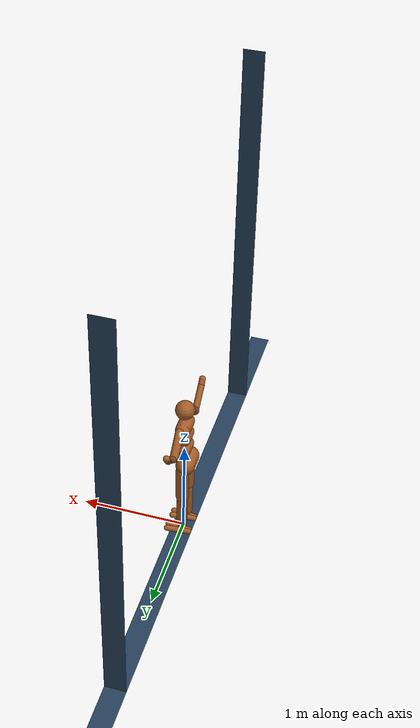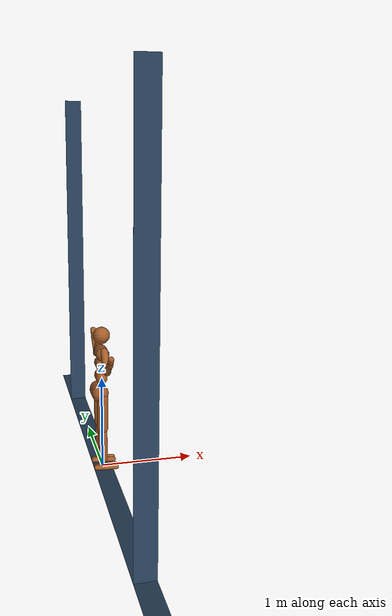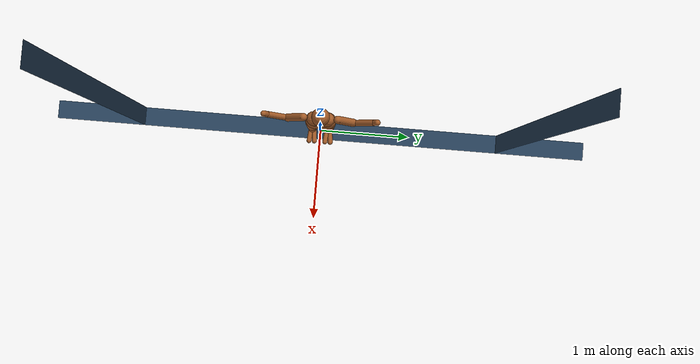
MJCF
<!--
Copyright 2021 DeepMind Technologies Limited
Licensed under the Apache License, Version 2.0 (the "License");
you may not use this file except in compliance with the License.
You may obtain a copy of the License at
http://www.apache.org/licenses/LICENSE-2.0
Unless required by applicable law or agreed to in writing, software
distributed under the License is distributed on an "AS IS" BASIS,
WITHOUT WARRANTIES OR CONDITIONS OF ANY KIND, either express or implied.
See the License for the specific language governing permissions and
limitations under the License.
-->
<!--timestep="0.00125"-->
<mujoco model="Humanoid and basic">
  <option timestep="0.0005" integrator="implicitfast"/>
      <!-- geoms -->
  <default>
    <geom condim="1" friction=".7" solimp=".9 .99 .003" solref=".015 1"/>
  </default>
  <include file="humanoid.xml"/>
  <include file="basic_scene.xml"/>
  <visual>
    <map force="0.1" zfar="30"/>
    <rgba haze="0.15 0.25 0.35 1"/>
      <!--offwidth="2560" offheight="1440"-->
    <global
      elevation="20"
      azimuth="10"
      />
    <headlight ambient=".8 .8 .8" specular=".8 .8 .8"/>
  </visual>
  <keyframe>
    <key name="wide" qpos="0 0 0 0 -.2 -.1 -.2 .1 0 0 0 0 0 0"/>
  </keyframe>
</mujoco>

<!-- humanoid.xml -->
<mujoco model="Humanoid">
  <statistic center="0 0 0.7"/>

  <asset>
    <texture name="body" type="cube" builtin="flat" mark="cross" width="128"
      height="128" rgb1="0.8 0.6 0.4" rgb2="0.8 0.6 0.4" markrgb="1 1 1" random="0.01"/>
    <material name="body" texture="body" texuniform="true" rgba="0.8 0.6 .4 1"/>
  </asset>

  <default>
    <motor ctrlrange="-1 1" ctrllimited="true"/>
    <default class="body">
      <geom type="capsule" condim="1" friction=".7" solimp=".9 .99 .003"
        solref=".015 1" material="body" group="1"/>
      <default class="thigh">
        <geom size=".06"/>
      </default>
      <default class="shin">
        <geom fromto="0 0 0 0 0 -.3"  size=".049"/>
      </default>
      <default class="foot">
        <geom size=".027"/>
        <default class="foot1">
          <geom fromto="-.07 -.01 0 .14 -.03 0"/>
        </default>
        <default class="foot2">
          <geom fromto="-.07 .01 0 .14  .03 0"/>
        </default>
      </default>
      <default class="arm_upper">
        <geom size=".04"/>
      </default>
      <default class="arm_lower">
        <geom size=".031"/>
      </default>
      <default class="hand">
        <geom type="capsule" margin=".002" gap=".002"  size=".03 .025"/>
        <site size=".01" pos="0 0 0" rgba="1 1 .5 0"/>
      </default>

      <!-- joints -->
      <joint type="hinge" damping=".2" stiffness="1" armature=".01"
        limited="true" solimplimit="0 .99 .01"/>
      <default class="joint_big">
        <joint damping="5" stiffness="10"/>
        <default class="hip_x">
          <joint range="-40 30"/>
        </default>
        <default class="hip_z">
          <joint range="-60 35"/>
        </default>
        <default class="joint_big_stiff">
          <joint stiffness="20"/>
        </default>
      </default>
      <default class="knee">
        <joint pos="0 0 .02" axis="-1 0 0" range="-160 90"/>
      </default>
      <default class="shoulder">
        <joint range="-180 60"/>
      </default>
      <default class="elbow">
        <joint range="-100 85" stiffness="0"/>
      </default>
      <default class="wrist">
        <joint range="-140 85" stiffness="3" pos="0 0 0"/>
      </default>
    </default>
  </default>

  <worldbody>
    <light name="spotlight" mode="targetbodycom" target="torso"
      diffuse=".8 .8 .8" specular="0.3 0.3 0.3" pos="0 -6 4" cutoff="30"/>
    <body name="torso" pos="0 0 1.282" childclass="body">
      <light name="top" pos="0 0 2" mode="trackcom"/>
      <camera name="back" pos="-5 0 0" xyaxes="0 -1 0 0 0 1" mode="trackcom"/>
      <camera name="side" pos="0 -3 1" xyaxes="1 0 0 0 1 2" mode="trackcom"/>
      <joint name="human_z_root" type="slide" axis="0 0 1" range="-10 10"/>
      <joint name="human_x_root" type="slide" axis="0 1 0" range="-3 3"/>
      <joint name="human_hinge_root" type="hinge" axis="1 0 0" range="-1000 1000"/>
      <geom name="torso" fromto="0 -.07 0 0 .07 0" size=".07"/>
      <geom name="waist_upper" fromto="-.01 -.06 -.12 -.01 .06 -.12" size=".06"/>
      <body name="head" pos="0 0 .19">
        <geom name="head" type="sphere" size=".09" contype="0" conaffinity="0"/>
        <camera name="egocentric" pos=".09 0 0" xyaxes="0 -1 0 .1 0 1" fovy="80"/>
      </body>
      <body name="waist_lower" pos="-.01 0 -.26">
        <geom name="waist_lower" fromto="0 -.06 0 0 .06 0" size=".06"/>
        <body name="pelvis" pos="0 0 -.165">
          <joint name="abdomen_x" pos="0 0 .1" axis="1 0 0" range="-35 35" class="joint_big"/>
          <geom name="butt" fromto="-.02 -.07 0 -.02 .07 0" size=".09"/>
          <body name="thigh_right" pos="0 -.1 -.04">
            <joint name="hip_x_right" axis="1 0 0" class="hip_x"/>
            <geom name="thigh_right" fromto="0 0 0 0 .01 -.34" class="thigh"/>
            <body name="shin_right" pos="0 .01 -.4">
              <joint name="knee_right" class="knee"/>
              <geom name="shin_right" class="shin"/>
              <body name="foot_right" pos="0 0 -.39">
                <site name="foot_right" pos="0 0 0" size="0.1" rgba="1 1 1 0"/>
                <geom name="foot1_right" class="foot1"/>
                <geom name="foot2_right" class="foot2"/>
              </body>
            </body>
          </body>
          <body name="thigh_left" pos="0 .1 -.04">
            <joint name="hip_x_left" axis="-1 0 0" class="hip_x"/>
            <geom name="thigh_left" fromto="0 0 0 0 -.01 -.34" class="thigh"/>
            <body name="shin_left" pos="0 -.01 -.4">
              <joint name="knee_left" class="knee"/>
              <geom name="shin_left" fromto="0 0 0 0 0 -.3" class="shin"/>
              <body name="foot_left" pos="0 0 -.39">
                <geom name="foot1_left" class="foot1"/>
                <site name="foot_left" size="0.1" pos="0 0 0" rgba="1 1 .5 0"/>
                <geom name="foot2_left" class="foot2"/>
              </body>
            </body>
          </body>
        </body>
      </body>
      <!--Modified for 2d-->
      <body name="upper_arm_right" pos="0 -.17 .06">
        <site name="shoulder1_right" size="0.05" pos="0 0 0" rgba="1 1 .5 0"/>
        <joint name="shoulder1_right" axis="1 0 0"  class="shoulder"/>
        <geom name="upper_arm_right" fromto="0 0 0 0 -.16 -.16" class="arm_upper"/>
        <body name="lower_arm_right" pos="0 -.18 -.18">
          <joint name="elbow_right" axis="1 0 0" class="elbow"/>
          <site name="elbow_right" size="0.05" pos="0 0 0" rgba="1 1 .5 0"/>
          <geom name="lower_arm_right" fromto="0 .01 .01 0 -.17 .17" class="arm_lower"/>
          <body name="hand_right" pos="0 -.18 .18" zaxis="0 -1 1.5">
            <site name="hand_right" class="hand"/>
            <geom name="hand_right1" type="capsule" pos="0 0 -.025" class="hand"/>
            <site name="hand_right1" class="hand" pos="0 0 -.025" size="0.1"/> <!--Check size.-->
            <geom name="hand_right2"  type="capsule" pos="0 0 .025" class="hand"/>
            <site name="hand_right2" class="hand" pos="0 0 .025" size="0.1"/> <!--Check size.-->
            <joint name="wrist_right" axis="1 0 0" class="wrist" stiffness="0"/>
              <!--friction="1 0.005 0.03"-->
          </body>
        </body>
      </body>
      <!--Modified for 2d-->
      <body name="upper_arm_left" pos="0 .17 .06">
        <joint name="shoulder1_left" axis="-1 0 0" class="shoulder"/>
        <site name="shoulder1_left" size="0.05" pos="0 0 0" rgba="1 1 .5 0"/>
        <geom name="upper_arm_left" fromto="0 0 0 0 .16 -.16" class="arm_upper"/>
        <body name="lower_arm_left" pos="0 .18 -.18">
          <joint name="elbow_left" axis="-1 0 0" class="elbow"/>
          <site name="elbow_left" size="0.05" pos="0 0 0" rgba="1 1 .5 0"/>
          <geom name="lower_arm_left" fromto="0 -.01 .01 0 .17 .17" class="arm_lower"/>
          <body name="hand_left" pos="0 .18 .18" zaxis="0 1 1.5">
            <site name="hand_left" class="hand" />
            <geom name="hand_left1" type="capsule" class="hand" pos="0 0 -.025"/>
            <site name="hand_left1" class="hand" pos="0 0 -.025" size="0.1"/>
            <geom name="hand_left2" type="capsule" class="hand"
              pos="0 0 .025"/>
            <site name="hand_left2" class="hand" pos="0 0 .025" size="0.1"/>
            <joint name="wrist_left" axis="-1 0 0" class="wrist" stiffness="0"/>
          </body>
        </body>
      </body>
    </body>
  </worldbody>

  <contact>
    <exclude body1="waist_lower" body2="thigh_right"/>
    <exclude body1="waist_lower" body2="thigh_left"/>
  </contact>

  <actuator>
    <motor name="knee_right"      gear="40"  joint="knee_right"/>
    <motor name="knee_left"       gear="40"  joint="knee_left"/>
    <motor name="abdomen_x"       gear="40"  joint="abdomen_x"/>
    <motor name="hip_x_right"     gear="40"  joint="hip_x_right"/>
    <motor name="hip_x_left"      gear="40"  joint="hip_x_left"/>
    <motor name="shoulder1_right" gear="100"  joint="shoulder1_right"/>
    <motor name="elbow_right"     gear="100"  joint="elbow_right"/>
    <motor name="shoulder1_left"  gear="100"  joint="shoulder1_left"/>
    <motor name="elbow_left"      gear="100"  joint="elbow_left"/>
    <motor name="wrist_left"      gear="40"  joint="wrist_left"/>
    <adhesion name="hand_right_adh" body="hand_right" gain="1000"
      ctrlrange="0 1"/>
    <adhesion name="hand_left_adh" body="hand_left" gain="1000"
      ctrlrange="0 1"/>
  </actuator>

  <sensor>
    <touch name="hand_right1" site="hand_right1"/>
    <touch name="hand_right2" site="hand_right2"/>
    <touch name="hand_left1" site="hand_left1"/>
    <touch name="hand_left2" site="hand_left2"/>
    <touch name="foot_left" site="foot_left"/>
    <touch name="foot_right" site="foot_right"/>
  </sensor>

    <!--The values below are split into rows for readibility:-->
      <!--torso position-->
      <!--torso orientation-->
      <!--spinal-->
      <!--right leg-->
      <!--left leg-->
      <!--arms-->
    -->
         <!--qpos="0 0 0.596-->
         <!--qpos="0 0 1.21948-->
         <!--qpos="0.4 0 0.0757706-->
         <!--qpos="-0.4 0 0.08122-->
</mujoco>

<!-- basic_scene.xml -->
<mujoco model="Tennis serve">
  <visual>
    <map force="0.1" zfar="30"/>
    <rgba haze="0.15 0.25 0.35 1"/>
      <!--offwidth="2560" offheight="1440"-->
    <global
      elevation="20"
      azimuth="10"
      />
    <headlight ambient=".8 .8 .8" specular=".8 .8 .8"/>
  </visual>

  <statistic center="0 0 0.7"/>

  <asset>
    <texture type="skybox" builtin="gradient" rgb1=".3 .5 .7" rgb2="0 0 0"
      width="32" height="512"/>
    <texture name="grid" type="2d" builtin="checker" width="512" height="512"
      rgb1=".1 .2 .3" rgb2=".2 .3 .4"/>
    <material name="grid" texture="grid" texrepeat="1 1" texuniform="true"
      reflectance=".2"/>
    <texture name="obj" type="cube" builtin="flat" mark="cross" width="128"
      height="128" rgb1="0.8 0.6 0.4" rgb2="0.8 0.6 0.4" markrgb="1 1 1"
      random="0.01"/>
    <material name="obj" texture="obj" texuniform="true" rgba="0.8 0.6 .4 1"/>
  </asset>

  <worldbody>
    <geom name="floor" size=".1 3 .05" type="plane" material="grid"
      condim="3"/>
    <body name="wall" pos="0 0 0" xyaxes="1 0 0 0 0 1">
      <geom name="rwall2" pos = "0 2 -2" size=".1 2 .05" type="plane"
        material="grid" condim="3"/>
    </body>
    <body name="lwall" pos="0 0 0" xyaxes="-1 0 0 0 0 1">
      <geom name="lwall2" pos = "0 2 -2" size=".1 2 .05" type="plane"
        material="grid" condim="3"/>
    </body>
    <body name="ceil" pos="0 0 0" xyaxes="-1 0 0 0 1 0">
      <geom name="ceil2" pos = "0 0 -3" size=".1 2 .05" type="plane"
        material="grid" condim="3"/>
    </body>
    <camera name="forward" pos="9 0 0" xyaxes="0 1 0 0 0 1"/>

        <!--material="obj" condim="3" friction="1 0.005 0.0001"-->

        <!--material="obj" condim="3" rgba=".7 0 0 1"-->
        <!--material="obj" condim="3" friction="1 0.005 0.0001" rgba=".7 0 0 1"-->
        <!--material="obj" condim="3" friction="1 0.005 0.0001" rgba=".7 0 0 1"-->

  </worldbody>
</mujoco>
